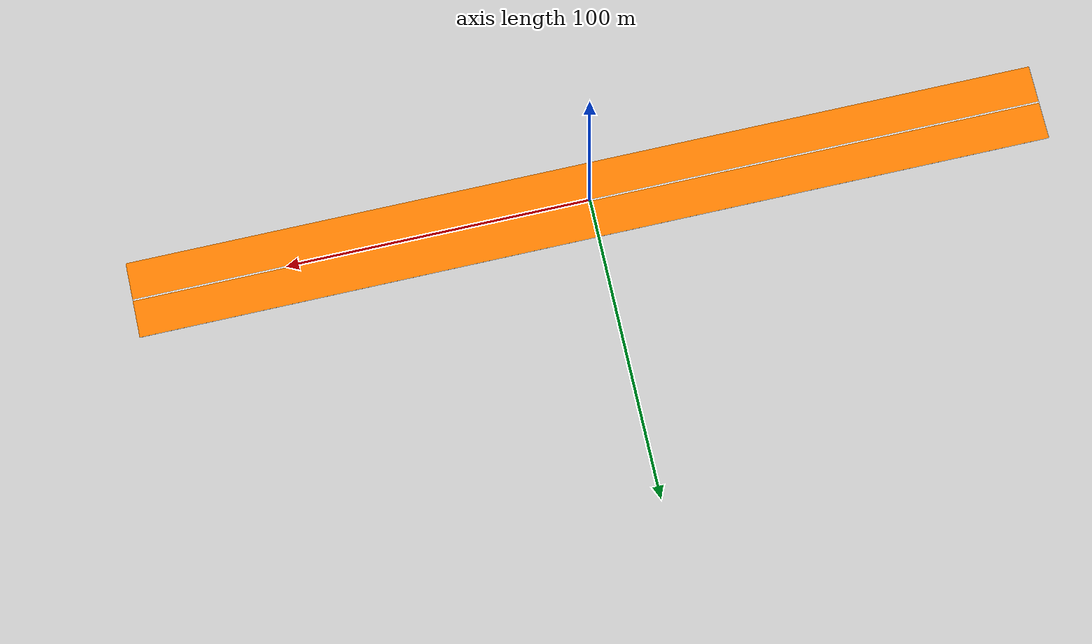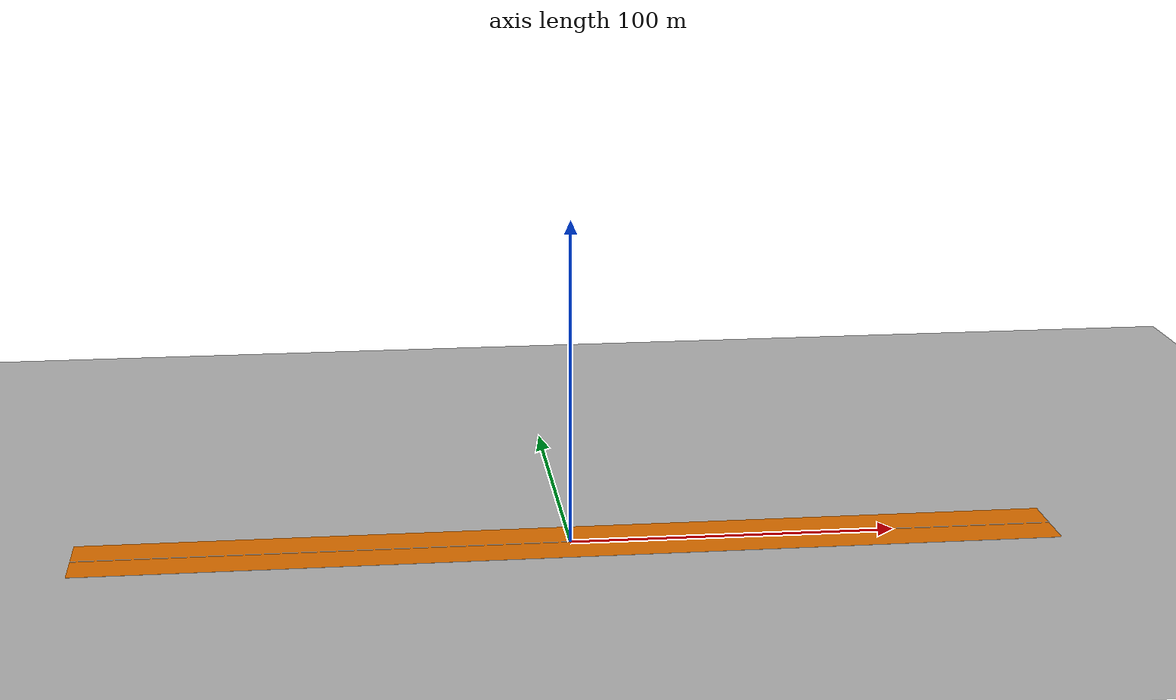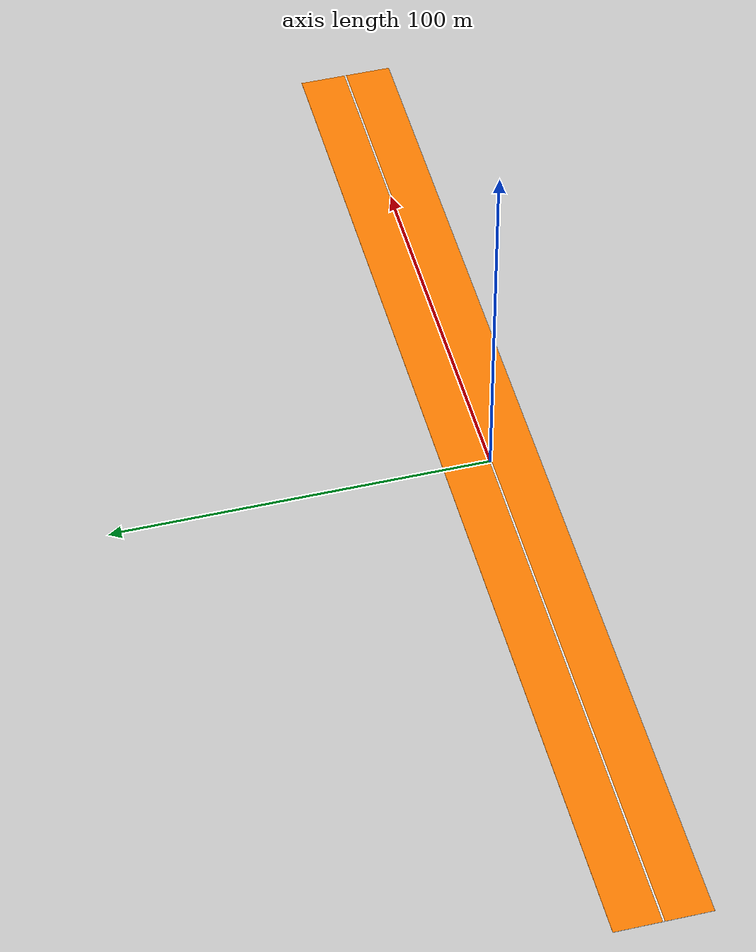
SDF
<?xml version="1.0" encoding="UTF-8"?>
<sdf version="1.9">
  <world name="default">
    <physics type="ode">
      <max_step_size>0.004</max_step_size>
      <real_time_factor>1.0</real_time_factor>
      <real_time_update_rate>250</real_time_update_rate>
    </physics>
    <gravity>0 0 -9.8</gravity>
    <magnetic_field>6e-06 2.3e-05 -4.2e-05</magnetic_field>
    <atmosphere type="adiabatic"/>

    <scene>
      <ambient>0.8 0.8 0.8 1</ambient>
      <background>0.8 0.8 0.8 1</background>
      <shadows>true</shadows>
      <sky>
        <clouds>
          <speed>12</speed>
          <direction>1.57</direction>
          <humidity>0.5</humidity>
          <mean_size>0.5</mean_size>
        </clouds>
      </sky>
    </scene>

    <model name="ground_plane">
      <static>true</static>
      <link name="link">
        <collision name="collision">
          <geometry>
            <plane>
              <normal>0 0 1</normal>
              <size>1 1</size>
            </plane>
          </geometry>
          <surface>
            <friction><ode/></friction>
            <bounce/>
            <contact/>
          </surface>
        </collision>
        <visual name="visual">
          <geometry>
            <plane>
              <normal>0 0 1</normal>
              <size>500 500</size>
            </plane>
          </geometry>
          <material>
            <ambient>0.8 0.8 0.8 1</ambient>
            <diffuse>0.8 0.8 0.8 1</diffuse>
            <specular>0.8 0.8 0.8 1</specular>
          </material>
        </visual>
      </link>
    </model>

    <model name="renkli_asfalt_pist">
      <static>true</static>
      <pose>0 0 0.02 0 0 0</pose>
      <link name="pist_link">
        <visual name="pist_visual">
          <geometry>
            <box><size>300 25 0.05</size></box>
          </geometry>
          <material>
            <ambient>1 0.5 0 1</ambient>
            <diffuse>1 0.5 0 1</diffuse>
            <specular>0.5 0.5 0.5 1</specular>
          </material>
        </visual>
        <visual name="merkez_cizgisi">
          <pose>0 0 0.03 0 0 0</pose>
          <geometry>
            <box><size>300 0.5 0.01</size></box>
          </geometry>
          <material>
            <ambient>1 1 1 1</ambient>
            <diffuse>1 1 1 1</diffuse>
          </material>
        </visual>
      </link>
    </model>

    <light name="sunUTC" type="directional">
      <pose>0 0 500 0 -0 0</pose>
      <cast_shadows>true</cast_shadows>
      <intensity>1</intensity>
      <direction>0.001 0.625 -0.78</direction>
      <diffuse>0.904 0.904 0.904 1</diffuse>
      <specular>0.271 0.271 0.271 1</specular>
      <attenuation>
        <range>2000</range>
        <linear>0</linear>
        <constant>1</constant>
        <quadratic>0</quadratic>
      </attenuation>
    </light>

    <spherical_coordinates>
      <surface_model>EARTH_WGS84</surface_model>
      <world_frame_orientation>ENU</world_frame_orientation>
      <latitude_deg>47.397971</latitude_deg>
      <longitude_deg>8.546163</longitude_deg>
      <elevation>0</elevation>
    </spherical_coordinates>
  </world>
</sdf>
